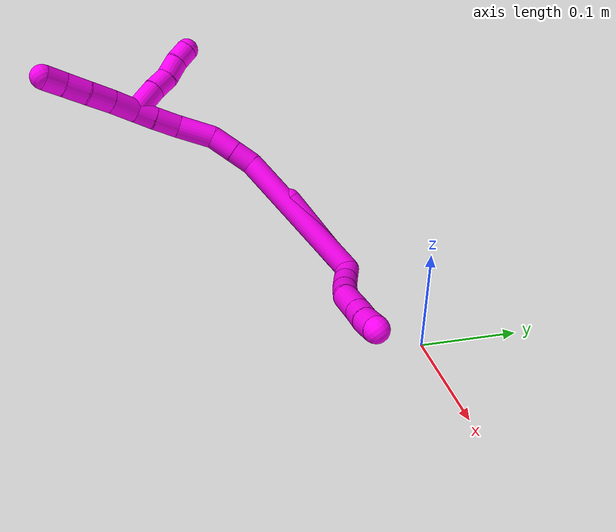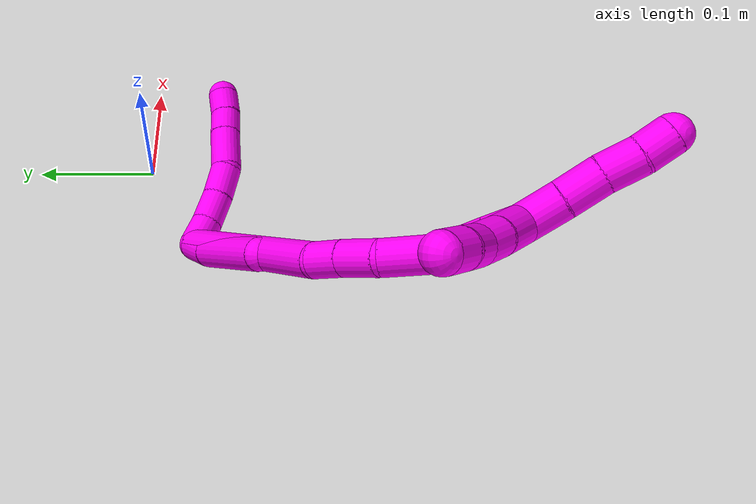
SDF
<sdf version="1.7">
 <world name="default">
  <model name="photoneo_s_sensor">
   <static>1</static>
   <pose>0 0 2 1.57079 1.57079 3.14159</pose>
   <link name="link">
    <inertial><mass>0.1</mass></inertial>
    <sensor name="sensor" type="depth">
     <update_rate>30</update_rate>
     <camera>
      <horizontal_fov>1.22</horizontal_fov>
      <image><width>1920</width><height>1200</height><format>B8G8R8</format></image>
      <clip><near>0.1</near><far>4</far></clip>
      <depth_camera><output>points</output></depth_camera>
     </camera>
     <plugin name="camera_plugin" filename="libgazebo_ros_depth_camera.so">
      <baseline>0.2</baseline>
      <alwaysOn>1</alwaysOn>
      <updateRate>0.0</updateRate>
      <cameraName>camera_ir</cameraName>
      <imageTopicName>/camera/color/image_raw</imageTopicName>
      <cameraInfoTopicName>/camera/color/camera_info</cameraInfoTopicName>
      <depthImageTopicName>/camera/depth/image_raw</depthImageTopicName>
      <depthImageCameraInfoTopicName>/camera/depth/camera_info</depthImageCameraInfoTopicName>
      <pointCloudTopicName>/camera/depth/points</pointCloudTopicName>
      <frameName>fr_optical</frameName>
      <pointCloudCutoff>0.1</pointCloudCutoff>
      <pointCloudCutoffMax>2.0</pointCloudCutoffMax>
      <distortionK1>0</distortionK1>
      <distortionK2>0</distortionK2>
      <distortionK3>0</distortionK3>
      <distortionT1>0</distortionT1>
      <distortionT2>0</distortionT2>
      <CxPrime>0</CxPrime>
      <Cx>0</Cx>
      <Cy>0</Cy>
      <focalLength>0</focalLength>
      <hackBaseline>0</hackBaseline>
     </plugin>
    </sensor>
   </link>
  </model>
  <model name="10">
   <static>0</static>
   <link name="10">
    <collision name="collision-cylinder-e_1_2_8">
     <pose>0.010362 -0.000328 -0.004202 3.06372 1.18447 3.02592</pose>
     <geometry><cylinder><radius>0.0125</radius><length>0.022373</length></cylinder></geometry>
     <surface>
      <friction><ode><mu>1.16</mu><mu2>1.16</mu2><slip1>0</slip1><slip2>0</slip2></ode></friction>
      <contact><ode><kp>1e+06</kp><kd>1</kd><max_vel>0</max_vel><min_depth>0.001</min_depth></ode></contact>
     </surface>
    </collision>
    <visual name="visual-cylinder-e_1_2_8">
     <pose>0.010362 -0.000328 -0.004202 3.06372 1.18447 3.02592</pose>
     <geometry><cylinder><radius>0.0125</radius><length>0.022373</length></cylinder></geometry>
     <material><ambient>1 0 0.964706 1</ambient></material>
    </visual>
    <collision name="collision-cylinder-e_2_8_9">
     <pose>0.033077 0.000796 -0.012335 -2.78774 1.24371 -2.65264</pose>
     <geometry><cylinder><radius>0.0125</radius><length>0.026087</length></cylinder></geometry>
     <surface>
      <friction><ode><mu>1.16</mu><mu2>1.16</mu2><slip1>0</slip1><slip2>0</slip2></ode></friction>
      <contact><ode><kp>1e+06</kp><kd>1</kd><max_vel>0</max_vel><min_depth>0.001</min_depth></ode></contact>
     </surface>
    </collision>
    <visual name="visual-cylinder-e_2_8_9">
     <pose>0.033077 0.000796 -0.012335 -2.78774 1.24371 -2.65264</pose>
     <geometry><cylinder><radius>0.0125</radius><length>0.026087</length></cylinder></geometry>
     <material><ambient>1 0 0.964706 1</ambient></material>
    </visual>
    <collision name="collision-cylinder-e_3_9_10">
     <pose>0.057878 0.005157 -0.020029 -2.48348 1.2059 -2.22074</pose>
     <geometry><cylinder><radius>0.0125</radius><length>0.026653</length></cylinder></geometry>
     <surface>
      <friction><ode><mu>1.16</mu><mu2>1.16</mu2><slip1>0</slip1><slip2>0</slip2></ode></friction>
      <contact><ode><kp>1e+06</kp><kd>1</kd><max_vel>0</max_vel><min_depth>0.001</min_depth></ode></contact>
     </surface>
    </collision>
    <visual name="visual-cylinder-e_3_9_10">
     <pose>0.057878 0.005157 -0.020029 -2.48348 1.2059 -2.22074</pose>
     <geometry><cylinder><radius>0.0125</radius><length>0.026653</length></cylinder></geometry>
     <material><ambient>1 0 0.964706 1</ambient></material>
    </visual>
    <collision name="collision-cylinder-e_4_10_11">
     <pose>0.083763 0.014319 -0.032697 -2.52937 0.890045 -1.97114</pose>
     <geometry><cylinder><radius>0.0125</radius><length>0.034579</length></cylinder></geometry>
     <surface>
      <friction><ode><mu>1.16</mu><mu2>1.16</mu2><slip1>0</slip1><slip2>0</slip2></ode></friction>
      <contact><ode><kp>1e+06</kp><kd>1</kd><max_vel>0</max_vel><min_depth>0.001</min_depth></ode></contact>
     </surface>
    </collision>
    <visual name="visual-cylinder-e_4_10_11">
     <pose>0.083763 0.014319 -0.032697 -2.52937 0.890045 -1.97114</pose>
     <geometry><cylinder><radius>0.0125</radius><length>0.034579</length></cylinder></geometry>
     <material><ambient>1 0 0.964706 1</ambient></material>
    </visual>
    <collision name="collision-cylinder-e_5_11_12">
     <pose>0.105286 0.023969 -0.046472 -2.53264 0.937524 -2.03082</pose>
     <geometry><cylinder><radius>0.0125</radius><length>0.020067</length></cylinder></geometry>
     <surface>
      <friction><ode><mu>1.16</mu><mu2>1.16</mu2><slip1>0</slip1><slip2>0</slip2></ode></friction>
      <contact><ode><kp>1e+06</kp><kd>1</kd><max_vel>0</max_vel><min_depth>0.001</min_depth></ode></contact>
     </surface>
    </collision>
    <visual name="visual-cylinder-e_5_11_12">
     <pose>0.105286 0.023969 -0.046472 -2.53264 0.937524 -2.03082</pose>
     <geometry><cylinder><radius>0.0125</radius><length>0.020067</length></cylinder></geometry>
     <material><ambient>1 0 0.964706 1</ambient></material>
    </visual>
    <collision name="collision-cylinder-e_6_12_6">
     <pose>0.120771 0.031886 -0.056564 -2.42805 0.819655 -1.7234</pose>
     <geometry><cylinder><radius>0.0125</radius><length>0.02024</length></cylinder></geometry>
     <surface>
      <friction><ode><mu>1.16</mu><mu2>1.16</mu2><slip1>0</slip1><slip2>0</slip2></ode></friction>
      <contact><ode><kp>1e+06</kp><kd>1</kd><max_vel>0</max_vel><min_depth>0.001</min_depth></ode></contact>
     </surface>
    </collision>
    <visual name="visual-cylinder-e_6_12_6">
     <pose>0.120771 0.031886 -0.056564 -2.42805 0.819655 -1.7234</pose>
     <geometry><cylinder><radius>0.0125</radius><length>0.02024</length></cylinder></geometry>
     <material><ambient>1 0 0.964706 1</ambient></material>
    </visual>
    <collision name="collision-cylinder-e_1_2_13">
     <pose>-0.000343 -0.001597 0.01241 0.127991 -0.027413 -0.001757</pose>
     <geometry><cylinder><radius>0.0125</radius><length>0.025034</length></cylinder></geometry>
     <surface>
      <friction><ode><mu>1.16</mu><mu2>1.16</mu2><slip1>0</slip1><slip2>0</slip2></ode></friction>
      <contact><ode><kp>1e+06</kp><kd>1</kd><max_vel>0</max_vel><min_depth>0.001</min_depth></ode></contact>
     </surface>
    </collision>
    <visual name="visual-cylinder-e_1_2_13">
     <pose>-0.000343 -0.001597 0.01241 0.127991 -0.027413 -0.001757</pose>
     <geometry><cylinder><radius>0.0125</radius><length>0.025034</length></cylinder></geometry>
     <material><ambient>1 0 0.964706 1</ambient></material>
    </visual>
    <collision name="collision-cylinder-e_2_13_5">
     <pose>0.003296 -0.003356 0.06209 0.004331 0.106452 0.000231</pose>
     <geometry><cylinder><radius>0.0125</radius><length>0.074966</length></cylinder></geometry>
     <surface>
      <friction><ode><mu>1.16</mu><mu2>1.16</mu2><slip1>0</slip1><slip2>0</slip2></ode></friction>
      <contact><ode><kp>1e+06</kp><kd>1</kd><max_vel>0</max_vel><min_depth>0.001</min_depth></ode></contact>
     </surface>
    </collision>
    <visual name="visual-cylinder-e_2_13_5">
     <pose>0.003296 -0.003356 0.06209 0.004331 0.106452 0.000231</pose>
     <geometry><cylinder><radius>0.0125</radius><length>0.074966</length></cylinder></geometry>
     <material><ambient>1 0 0.964706 1</ambient></material>
    </visual>
    <collision name="collision-cylinder-e_1_2_14">
     <pose>0.008092 -0.005474 0.078648 0.069492 0.102278 0.003558</pose>
     <geometry><cylinder><radius>0.0125</radius><length>0.158506</length></cylinder></geometry>
     <surface>
      <friction><ode><mu>1.16</mu><mu2>1.16</mu2><slip1>0</slip1><slip2>0</slip2></ode></friction>
      <contact><ode><kp>1e+06</kp><kd>1</kd><max_vel>0</max_vel><min_depth>0.001</min_depth></ode></contact>
     </surface>
    </collision>
    <visual name="visual-cylinder-e_1_2_14">
     <pose>0.008092 -0.005474 0.078648 0.069492 0.102278 0.003558</pose>
     <geometry><cylinder><radius>0.0125</radius><length>0.158506</length></cylinder></geometry>
     <material><ambient>1 0 0.964706 1</ambient></material>
    </visual>
    <collision name="collision-cylinder-e_2_14_15">
     <pose>0.020484 -0.013469 0.168214 0.226935 0.366494 0.042232</pose>
     <geometry><cylinder><radius>0.0125</radius><length>0.024003</length></cylinder></geometry>
     <surface>
      <friction><ode><mu>1.16</mu><mu2>1.16</mu2><slip1>0</slip1><slip2>0</slip2></ode></friction>
      <contact><ode><kp>1e+06</kp><kd>1</kd><max_vel>0</max_vel><min_depth>0.001</min_depth></ode></contact>
     </surface>
    </collision>
    <visual name="visual-cylinder-e_2_14_15">
     <pose>0.020484 -0.013469 0.168214 0.226935 0.366494 0.042232</pose>
     <geometry><cylinder><radius>0.0125</radius><length>0.024003</length></cylinder></geometry>
     <material><ambient>1 0 0.964706 1</ambient></material>
    </visual>
    <collision name="collision-cylinder-e_3_15_16">
     <pose>0.029239 -0.019272 0.192195 0.246117 0.319362 0.039834</pose>
     <geometry><cylinder><radius>0.0125</radius><length>0.028373</length></cylinder></geometry>
     <surface>
      <friction><ode><mu>1.16</mu><mu2>1.16</mu2><slip1>0</slip1><slip2>0</slip2></ode></friction>
      <contact><ode><kp>1e+06</kp><kd>1</kd><max_vel>0</max_vel><min_depth>0.001</min_depth></ode></contact>
     </surface>
    </collision>
    <visual name="visual-cylinder-e_3_15_16">
     <pose>0.029239 -0.019272 0.192195 0.246117 0.319362 0.039834</pose>
     <geometry><cylinder><radius>0.0125</radius><length>0.028373</length></cylinder></geometry>
     <material><ambient>1 0 0.964706 1</ambient></material>
    </visual>
    <collision name="collision-cylinder-e_4_16_17">
     <pose>0.044011 -0.031365 0.220111 0.53542 0.538563 0.151114</pose>
     <geometry><cylinder><radius>0.0125</radius><length>0.040234</length></cylinder></geometry>
     <surface>
      <friction><ode><mu>1.16</mu><mu2>1.16</mu2><slip1>0</slip1><slip2>0</slip2></ode></friction>
      <contact><ode><kp>1e+06</kp><kd>1</kd><max_vel>0</max_vel><min_depth>0.001</min_depth></ode></contact>
     </surface>
    </collision>
    <visual name="visual-cylinder-e_4_16_17">
     <pose>0.044011 -0.031365 0.220111 0.53542 0.538563 0.151114</pose>
     <geometry><cylinder><radius>0.0125</radius><length>0.040234</length></cylinder></geometry>
     <material><ambient>1 0 0.964706 1</ambient></material>
    </visual>
    <collision name="collision-cylinder-e_5_17_18">
     <pose>0.064704 -0.043995 0.243578 0.41737 0.833454 0.186933</pose>
     <geometry><cylinder><radius>0.0125</radius><length>0.028032</length></cylinder></geometry>
     <surface>
      <friction><ode><mu>1.16</mu><mu2>1.16</mu2><slip1>0</slip1><slip2>0</slip2></ode></friction>
      <contact><ode><kp>1e+06</kp><kd>1</kd><max_vel>0</max_vel><min_depth>0.001</min_depth></ode></contact>
     </surface>
    </collision>
    <visual name="visual-cylinder-e_5_17_18">
     <pose>0.064704 -0.043995 0.243578 0.41737 0.833454 0.186933</pose>
     <geometry><cylinder><radius>0.0125</radius><length>0.028032</length></cylinder></geometry>
     <material><ambient>1 0 0.964706 1</ambient></material>
    </visual>
    <collision name="collision-cylinder-e_6_18_1">
     <pose>0.08241 -0.050512 0.259098 0.372304 0.779738 0.154465</pose>
     <geometry><cylinder><radius>0.0125</radius><length>0.020852</length></cylinder></geometry>
     <surface>
      <friction><ode><mu>1.16</mu><mu2>1.16</mu2><slip1>0</slip1><slip2>0</slip2></ode></friction>
      <contact><ode><kp>1e+06</kp><kd>1</kd><max_vel>0</max_vel><min_depth>0.001</min_depth></ode></contact>
     </surface>
    </collision>
    <visual name="visual-cylinder-e_6_18_1">
     <pose>0.08241 -0.050512 0.259098 0.372304 0.779738 0.154465</pose>
     <geometry><cylinder><radius>0.0125</radius><length>0.020852</length></cylinder></geometry>
     <material><ambient>1 0 0.964706 1</ambient></material>
    </visual>
    <collision name="collision-cylinder-e_1_1_19">
     <pose>0.078166 -0.042577 0.273186 -0.976705 -0.733995 0.402916</pose>
     <geometry><cylinder><radius>0.0125</radius><length>0.03456</length></cylinder></geometry>
     <surface>
      <friction><ode><mu>1.16</mu><mu2>1.16</mu2><slip1>0</slip1><slip2>0</slip2></ode></friction>
      <contact><ode><kp>1e+06</kp><kd>1</kd><max_vel>0</max_vel><min_depth>0.001</min_depth></ode></contact>
     </surface>
    </collision>
    <visual name="visual-cylinder-e_1_1_19">
     <pose>0.078166 -0.042577 0.273186 -0.976705 -0.733995 0.402916</pose>
     <geometry><cylinder><radius>0.0125</radius><length>0.03456</length></cylinder></geometry>
     <material><ambient>1 0 0.964706 1</ambient></material>
    </visual>
    <collision name="collision-cylinder-e_2_19_20">
     <pose>0.058786 -0.024854 0.28386 -1.11313 -0.779136 0.500175</pose>
     <geometry><cylinder><radius>0.0125</radius><length>0.022216</length></cylinder></geometry>
     <surface>
      <friction><ode><mu>1.16</mu><mu2>1.16</mu2><slip1>0</slip1><slip2>0</slip2></ode></friction>
      <contact><ode><kp>1e+06</kp><kd>1</kd><max_vel>0</max_vel><min_depth>0.001</min_depth></ode></contact>
     </surface>
    </collision>
    <visual name="visual-cylinder-e_2_19_20">
     <pose>0.058786 -0.024854 0.28386 -1.11313 -0.779136 0.500175</pose>
     <geometry><cylinder><radius>0.0125</radius><length>0.022216</length></cylinder></geometry>
     <material><ambient>1 0 0.964706 1</ambient></material>
    </visual>
    <collision name="collision-cylinder-e_3_20_21">
     <pose>0.044972 -0.00988 0.293237 -0.929637 -0.548278 0.280196</pose>
     <geometry><cylinder><radius>0.0125</radius><length>0.023057</length></cylinder></geometry>
     <surface>
      <friction><ode><mu>1.16</mu><mu2>1.16</mu2><slip1>0</slip1><slip2>0</slip2></ode></friction>
      <contact><ode><kp>1e+06</kp><kd>1</kd><max_vel>0</max_vel><min_depth>0.001</min_depth></ode></contact>
     </surface>
    </collision>
    <visual name="visual-cylinder-e_3_20_21">
     <pose>0.044972 -0.00988 0.293237 -0.929637 -0.548278 0.280196</pose>
     <geometry><cylinder><radius>0.0125</radius><length>0.023057</length></cylinder></geometry>
     <material><ambient>1 0 0.964706 1</ambient></material>
    </visual>
    <collision name="collision-cylinder-e_4_21_4">
     <pose>0.032892 0.005169 0.302797 -1.09673 -0.646022 0.403391</pose>
     <geometry><cylinder><radius>0.0125</radius><length>0.020167</length></cylinder></geometry>
     <surface>
      <friction><ode><mu>1.16</mu><mu2>1.16</mu2><slip1>0</slip1><slip2>0</slip2></ode></friction>
      <contact><ode><kp>1e+06</kp><kd>1</kd><max_vel>0</max_vel><min_depth>0.001</min_depth></ode></contact>
     </surface>
    </collision>
    <visual name="visual-cylinder-e_4_21_4">
     <pose>0.032892 0.005169 0.302797 -1.09673 -0.646022 0.403391</pose>
     <geometry><cylinder><radius>0.0125</radius><length>0.020167</length></cylinder></geometry>
     <material><ambient>1 0 0.964706 1</ambient></material>
    </visual>
    <collision name="collision-cylinder-e_1_1_22">
     <pose>0.101444 -0.055405 0.273509 0.284699 0.981752 0.152913</pose>
     <geometry><cylinder><radius>0.0125</radius><length>0.028152</length></cylinder></geometry>
     <surface>
      <friction><ode><mu>1.16</mu><mu2>1.16</mu2><slip1>0</slip1><slip2>0</slip2></ode></friction>
      <contact><ode><kp>1e+06</kp><kd>1</kd><max_vel>0</max_vel><min_depth>0.001</min_depth></ode></contact>
     </surface>
    </collision>
    <visual name="visual-cylinder-e_1_1_22">
     <pose>0.101444 -0.055405 0.273509 0.284699 0.981752 0.152913</pose>
     <geometry><cylinder><radius>0.0125</radius><length>0.028152</length></cylinder></geometry>
     <material><ambient>1 0 0.964706 1</ambient></material>
    </visual>
    <collision name="collision-cylinder-e_2_22_23">
     <pose>0.124501 -0.059752 0.287353 0.327078 1.03812 0.187992</pose>
     <geometry><cylinder><radius>0.0125</radius><length>0.026358</length></cylinder></geometry>
     <surface>
      <friction><ode><mu>1.16</mu><mu2>1.16</mu2><slip1>0</slip1><slip2>0</slip2></ode></friction>
      <contact><ode><kp>1e+06</kp><kd>1</kd><max_vel>0</max_vel><min_depth>0.001</min_depth></ode></contact>
     </surface>
    </collision>
    <visual name="visual-cylinder-e_2_22_23">
     <pose>0.124501 -0.059752 0.287353 0.327078 1.03812 0.187992</pose>
     <geometry><cylinder><radius>0.0125</radius><length>0.026358</length></cylinder></geometry>
     <material><ambient>1 0 0.964706 1</ambient></material>
    </visual>
    <collision name="collision-cylinder-e_3_23_24">
     <pose>0.145656 -0.064594 0.300577 0.372652 0.924543 0.187315</pose>
     <geometry><cylinder><radius>0.0125</radius><length>0.024555</length></cylinder></geometry>
     <surface>
      <friction><ode><mu>1.16</mu><mu2>1.16</mu2><slip1>0</slip1><slip2>0</slip2></ode></friction>
      <contact><ode><kp>1e+06</kp><kd>1</kd><max_vel>0</max_vel><min_depth>0.001</min_depth></ode></contact>
     </surface>
    </collision>
    <visual name="visual-cylinder-e_3_23_24">
     <pose>0.145656 -0.064594 0.300577 0.372652 0.924543 0.187315</pose>
     <geometry><cylinder><radius>0.0125</radius><length>0.024555</length></cylinder></geometry>
     <material><ambient>1 0 0.964706 1</ambient></material>
    </visual>
    <collision name="collision-cylinder-e_4_24_3">
     <pose>0.164614 -0.068782 0.312309 0.299296 1.06493 0.177219</pose>
     <geometry><cylinder><radius>0.0125</radius><length>0.020935</length></cylinder></geometry>
     <surface>
      <friction><ode><mu>1.16</mu><mu2>1.16</mu2><slip1>0</slip1><slip2>0</slip2></ode></friction>
      <contact><ode><kp>1e+06</kp><kd>1</kd><max_vel>0</max_vel><min_depth>0.001</min_depth></ode></contact>
     </surface>
    </collision>
    <visual name="visual-cylinder-e_4_24_3">
     <pose>0.164614 -0.068782 0.312309 0.299296 1.06493 0.177219</pose>
     <geometry><cylinder><radius>0.0125</radius><length>0.020935</length></cylinder></geometry>
     <material><ambient>1 0 0.964706 1</ambient></material>
    </visual>
    <collision name="collision-sphere-3">
     <pose>0.173771 -0.070277 0.317156 0 -0 0</pose>
     <geometry><sphere><radius>0.0125</radius></sphere></geometry>
     <surface>
      <friction><ode><mu>1.16</mu><mu2>1.16</mu2><slip1>0</slip1><slip2>0</slip2></ode></friction>
      <contact><ode><kp>1e+06</kp><kd>1</kd><max_vel>0</max_vel><min_depth>0.001</min_depth></ode></contact>
     </surface>
    </collision>
    <visual name="visual-sphere-3">
     <pose>0.173771 -0.070277 0.317156 0 -0 0</pose>
     <geometry><sphere><radius>0.0125</radius></sphere></geometry>
     <material><ambient>1 0 0.964706 1</ambient></material>
    </visual>
    <collision name="collision-sphere-24">
     <pose>0.155458 -0.067286 0.307463 0 -0 0</pose>
     <geometry><sphere><radius>0.0125</radius></sphere></geometry>
     <surface>
      <friction><ode><mu>1.16</mu><mu2>1.16</mu2><slip1>0</slip1><slip2>0</slip2></ode></friction>
      <contact><ode><kp>1e+06</kp><kd>1</kd><max_vel>0</max_vel><min_depth>0.001</min_depth></ode></contact>
     </surface>
    </collision>
    <visual name="visual-sphere-24">
     <pose>0.155458 -0.067286 0.307463 0 -0 0</pose>
     <geometry><sphere><radius>0.0125</radius></sphere></geometry>
     <material><ambient>1 0 0.964706 1</ambient></material>
    </visual>
    <collision name="collision-sphere-23">
     <pose>0.135855 -0.061902 0.293691 0 -0 0</pose>
     <geometry><sphere><radius>0.0125</radius></sphere></geometry>
     <surface>
      <friction><ode><mu>1.16</mu><mu2>1.16</mu2><slip1>0</slip1><slip2>0</slip2></ode></friction>
      <contact><ode><kp>1e+06</kp><kd>1</kd><max_vel>0</max_vel><min_depth>0.001</min_depth></ode></contact>
     </surface>
    </collision>
    <visual name="visual-sphere-23">
     <pose>0.135855 -0.061902 0.293691 0 -0 0</pose>
     <geometry><sphere><radius>0.0125</radius></sphere></geometry>
     <material><ambient>1 0 0.964706 1</ambient></material>
    </visual>
    <collision name="collision-sphere-22">
     <pose>0.113148 -0.057602 0.281014 0 -0 0</pose>
     <geometry><sphere><radius>0.0125</radius></sphere></geometry>
     <surface>
      <friction><ode><mu>1.16</mu><mu2>1.16</mu2><slip1>0</slip1><slip2>0</slip2></ode></friction>
      <contact><ode><kp>1e+06</kp><kd>1</kd><max_vel>0</max_vel><min_depth>0.001</min_depth></ode></contact>
     </surface>
    </collision>
    <visual name="visual-sphere-22">
     <pose>0.113148 -0.057602 0.281014 0 -0 0</pose>
     <geometry><sphere><radius>0.0125</radius></sphere></geometry>
     <material><ambient>1 0 0.964706 1</ambient></material>
    </visual>
    <collision name="collision-sphere-4">
     <pose>0.026822 0.012332 0.306473 0 -0 0</pose>
     <geometry><sphere><radius>0.0125</radius></sphere></geometry>
     <surface>
      <friction><ode><mu>1.16</mu><mu2>1.16</mu2><slip1>0</slip1><slip2>0</slip2></ode></friction>
      <contact><ode><kp>1e+06</kp><kd>1</kd><max_vel>0</max_vel><min_depth>0.001</min_depth></ode></contact>
     </surface>
    </collision>
    <visual name="visual-sphere-4">
     <pose>0.026822 0.012332 0.306473 0 -0 0</pose>
     <geometry><sphere><radius>0.0125</radius></sphere></geometry>
     <material><ambient>1 0 0.964706 1</ambient></material>
    </visual>
    <collision name="collision-sphere-21">
     <pose>0.038963 -0.001995 0.299122 0 -0 0</pose>
     <geometry><sphere><radius>0.0125</radius></sphere></geometry>
     <surface>
      <friction><ode><mu>1.16</mu><mu2>1.16</mu2><slip1>0</slip1><slip2>0</slip2></ode></friction>
      <contact><ode><kp>1e+06</kp><kd>1</kd><max_vel>0</max_vel><min_depth>0.001</min_depth></ode></contact>
     </surface>
    </collision>
    <visual name="visual-sphere-21">
     <pose>0.038963 -0.001995 0.299122 0 -0 0</pose>
     <geometry><sphere><radius>0.0125</radius></sphere></geometry>
     <material><ambient>1 0 0.964706 1</ambient></material>
    </visual>
    <collision name="collision-sphere-20">
     <pose>0.05098 -0.017764 0.287352 0 -0 0</pose>
     <geometry><sphere><radius>0.0125</radius></sphere></geometry>
     <surface>
      <friction><ode><mu>1.16</mu><mu2>1.16</mu2><slip1>0</slip1><slip2>0</slip2></ode></friction>
      <contact><ode><kp>1e+06</kp><kd>1</kd><max_vel>0</max_vel><min_depth>0.001</min_depth></ode></contact>
     </surface>
    </collision>
    <visual name="visual-sphere-20">
     <pose>0.05098 -0.017764 0.287352 0 -0 0</pose>
     <geometry><sphere><radius>0.0125</radius></sphere></geometry>
     <material><ambient>1 0 0.964706 1</ambient></material>
    </visual>
    <collision name="collision-sphere-12">
     <pose>0.113374 0.027366 -0.051343 0 -0 0</pose>
     <geometry><sphere><radius>0.0125</radius></sphere></geometry>
     <surface>
      <friction><ode><mu>1.16</mu><mu2>1.16</mu2><slip1>0</slip1><slip2>0</slip2></ode></friction>
      <contact><ode><kp>1e+06</kp><kd>1</kd><max_vel>0</max_vel><min_depth>0.001</min_depth></ode></contact>
     </surface>
    </collision>
    <visual name="visual-sphere-12">
     <pose>0.113374 0.027366 -0.051343 0 -0 0</pose>
     <geometry><sphere><radius>0.0125</radius></sphere></geometry>
     <material><ambient>1 0 0.964706 1</ambient></material>
    </visual>
    <collision name="collision-sphere-11">
     <pose>0.097198 0.020573 -0.041602 0 -0 0</pose>
     <geometry><sphere><radius>0.0125</radius></sphere></geometry>
     <surface>
      <friction><ode><mu>1.16</mu><mu2>1.16</mu2><slip1>0</slip1><slip2>0</slip2></ode></friction>
      <contact><ode><kp>1e+06</kp><kd>1</kd><max_vel>0</max_vel><min_depth>0.001</min_depth></ode></contact>
     </surface>
    </collision>
    <visual name="visual-sphere-11">
     <pose>0.097198 0.020573 -0.041602 0 -0 0</pose>
     <geometry><sphere><radius>0.0125</radius></sphere></geometry>
     <material><ambient>1 0 0.964706 1</ambient></material>
    </visual>
    <collision name="collision-sphere-10">
     <pose>0.070327 0.008066 -0.023791 0 -0 0</pose>
     <geometry><sphere><radius>0.0125</radius></sphere></geometry>
     <surface>
      <friction><ode><mu>1.16</mu><mu2>1.16</mu2><slip1>0</slip1><slip2>0</slip2></ode></friction>
      <contact><ode><kp>1e+06</kp><kd>1</kd><max_vel>0</max_vel><min_depth>0.001</min_depth></ode></contact>
     </surface>
    </collision>
    <visual name="visual-sphere-10">
     <pose>0.070327 0.008066 -0.023791 0 -0 0</pose>
     <geometry><sphere><radius>0.0125</radius></sphere></geometry>
     <material><ambient>1 0 0.964706 1</ambient></material>
    </visual>
    <collision name="collision-sphere-9">
     <pose>0.045429 0.002248 -0.016267 0 -0 0</pose>
     <geometry><sphere><radius>0.0125</radius></sphere></geometry>
     <surface>
      <friction><ode><mu>1.16</mu><mu2>1.16</mu2><slip1>0</slip1><slip2>0</slip2></ode></friction>
      <contact><ode><kp>1e+06</kp><kd>1</kd><max_vel>0</max_vel><min_depth>0.001</min_depth></ode></contact>
     </surface>
    </collision>
    <visual name="visual-sphere-9">
     <pose>0.045429 0.002248 -0.016267 0 -0 0</pose>
     <geometry><sphere><radius>0.0125</radius></sphere></geometry>
     <material><ambient>1 0 0.964706 1</ambient></material>
    </visual>
    <collision name="collision-sphere-2">
     <geometry><sphere><radius>0.0125</radius></sphere></geometry>
     <surface>
      <friction><ode><mu>1.16</mu><mu2>1.16</mu2><slip1>0</slip1><slip2>0</slip2></ode></friction>
      <contact><ode><kp>1e+06</kp><kd>1</kd><max_vel>0</max_vel><min_depth>0.001</min_depth></ode></contact>
     </surface>
    </collision>
    <visual name="visual-sphere-2">
     <geometry><sphere><radius>0.0125</radius></sphere></geometry>
     <material><ambient>1 0 0.964706 1</ambient></material>
    </visual>
    <collision name="collision-sphere-19">
     <pose>0.066591 -0.031945 0.280368 0 -0 0</pose>
     <geometry><sphere><radius>0.0125</radius></sphere></geometry>
     <surface>
      <friction><ode><mu>1.16</mu><mu2>1.16</mu2><slip1>0</slip1><slip2>0</slip2></ode></friction>
      <contact><ode><kp>1e+06</kp><kd>1</kd><max_vel>0</max_vel><min_depth>0.001</min_depth></ode></contact>
     </surface>
    </collision>
    <visual name="visual-sphere-19">
     <pose>0.066591 -0.031945 0.280368 0 -0 0</pose>
     <geometry><sphere><radius>0.0125</radius></sphere></geometry>
     <material><ambient>1 0 0.964706 1</ambient></material>
    </visual>
    <collision name="collision-sphere-8">
     <pose>0.020724 -0.000656 -0.008404 0 -0 0</pose>
     <geometry><sphere><radius>0.0125</radius></sphere></geometry>
     <surface>
      <friction><ode><mu>1.16</mu><mu2>1.16</mu2><slip1>0</slip1><slip2>0</slip2></ode></friction>
      <contact><ode><kp>1e+06</kp><kd>1</kd><max_vel>0</max_vel><min_depth>0.001</min_depth></ode></contact>
     </surface>
    </collision>
    <visual name="visual-sphere-8">
     <pose>0.020724 -0.000656 -0.008404 0 -0 0</pose>
     <geometry><sphere><radius>0.0125</radius></sphere></geometry>
     <material><ambient>1 0 0.964706 1</ambient></material>
    </visual>
    <collision name="collision-sphere-6">
     <pose>0.128168 0.036407 -0.061786 0 -0 0</pose>
     <geometry><sphere><radius>0.0125</radius></sphere></geometry>
     <surface>
      <friction><ode><mu>1.16</mu><mu2>1.16</mu2><slip1>0</slip1><slip2>0</slip2></ode></friction>
      <contact><ode><kp>1e+06</kp><kd>1</kd><max_vel>0</max_vel><min_depth>0.001</min_depth></ode></contact>
     </surface>
    </collision>
    <visual name="visual-sphere-6">
     <pose>0.128168 0.036407 -0.061786 0 -0 0</pose>
     <geometry><sphere><radius>0.0125</radius></sphere></geometry>
     <material><ambient>1 0 0.964706 1</ambient></material>
    </visual>
    <collision name="collision-sphere-13">
     <pose>-0.000686 -0.003194 0.02482 0 -0 0</pose>
     <geometry><sphere><radius>0.0125</radius></sphere></geometry>
     <surface>
      <friction><ode><mu>1.16</mu><mu2>1.16</mu2><slip1>0</slip1><slip2>0</slip2></ode></friction>
      <contact><ode><kp>1e+06</kp><kd>1</kd><max_vel>0</max_vel><min_depth>0.001</min_depth></ode></contact>
     </surface>
    </collision>
    <visual name="visual-sphere-13">
     <pose>-0.000686 -0.003194 0.02482 0 -0 0</pose>
     <geometry><sphere><radius>0.0125</radius></sphere></geometry>
     <material><ambient>1 0 0.964706 1</ambient></material>
    </visual>
    <collision name="collision-sphere-5">
     <pose>0.007279 -0.003517 0.099361 0 -0 0</pose>
     <geometry><sphere><radius>0.0125</radius></sphere></geometry>
     <surface>
      <friction><ode><mu>1.16</mu><mu2>1.16</mu2><slip1>0</slip1><slip2>0</slip2></ode></friction>
      <contact><ode><kp>1e+06</kp><kd>1</kd><max_vel>0</max_vel><min_depth>0.001</min_depth></ode></contact>
     </surface>
    </collision>
    <visual name="visual-sphere-5">
     <pose>0.007279 -0.003517 0.099361 0 -0 0</pose>
     <geometry><sphere><radius>0.0125</radius></sphere></geometry>
     <material><ambient>1 0 0.964706 1</ambient></material>
    </visual>
    <collision name="collision-sphere-14">
     <pose>0.016183 -0.010949 0.157297 0 -0 0</pose>
     <geometry><sphere><radius>0.0125</radius></sphere></geometry>
     <surface>
      <friction><ode><mu>1.16</mu><mu2>1.16</mu2><slip1>0</slip1><slip2>0</slip2></ode></friction>
      <contact><ode><kp>1e+06</kp><kd>1</kd><max_vel>0</max_vel><min_depth>0.001</min_depth></ode></contact>
     </surface>
    </collision>
    <visual name="visual-sphere-14">
     <pose>0.016183 -0.010949 0.157297 0 -0 0</pose>
     <geometry><sphere><radius>0.0125</radius></sphere></geometry>
     <material><ambient>1 0 0.964706 1</ambient></material>
    </visual>
    <collision name="collision-sphere-15">
     <pose>0.024785 -0.01599 0.179131 0 -0 0</pose>
     <geometry><sphere><radius>0.0125</radius></sphere></geometry>
     <surface>
      <friction><ode><mu>1.16</mu><mu2>1.16</mu2><slip1>0</slip1><slip2>0</slip2></ode></friction>
      <contact><ode><kp>1e+06</kp><kd>1</kd><max_vel>0</max_vel><min_depth>0.001</min_depth></ode></contact>
     </surface>
    </collision>
    <visual name="visual-sphere-15">
     <pose>0.024785 -0.01599 0.179131 0 -0 0</pose>
     <geometry><sphere><radius>0.0125</radius></sphere></geometry>
     <material><ambient>1 0 0.964706 1</ambient></material>
    </visual>
    <collision name="collision-sphere-16">
     <pose>0.033693 -0.022554 0.205258 0 -0 0</pose>
     <geometry><sphere><radius>0.0125</radius></sphere></geometry>
     <surface>
      <friction><ode><mu>1.16</mu><mu2>1.16</mu2><slip1>0</slip1><slip2>0</slip2></ode></friction>
      <contact><ode><kp>1e+06</kp><kd>1</kd><max_vel>0</max_vel><min_depth>0.001</min_depth></ode></contact>
     </surface>
    </collision>
    <visual name="visual-sphere-16">
     <pose>0.033693 -0.022554 0.205258 0 -0 0</pose>
     <geometry><sphere><radius>0.0125</radius></sphere></geometry>
     <material><ambient>1 0 0.964706 1</ambient></material>
    </visual>
    <collision name="collision-sphere-17">
     <pose>0.054329 -0.040176 0.234963 0 -0 0</pose>
     <geometry><sphere><radius>0.0125</radius></sphere></geometry>
     <surface>
      <friction><ode><mu>1.16</mu><mu2>1.16</mu2><slip1>0</slip1><slip2>0</slip2></ode></friction>
      <contact><ode><kp>1e+06</kp><kd>1</kd><max_vel>0</max_vel><min_depth>0.001</min_depth></ode></contact>
     </surface>
    </collision>
    <visual name="visual-sphere-17">
     <pose>0.054329 -0.040176 0.234963 0 -0 0</pose>
     <geometry><sphere><radius>0.0125</radius></sphere></geometry>
     <material><ambient>1 0 0.964706 1</ambient></material>
    </visual>
    <collision name="collision-sphere-18">
     <pose>0.07508 -0.047815 0.252192 0 -0 0</pose>
     <geometry><sphere><radius>0.0125</radius></sphere></geometry>
     <surface>
      <friction><ode><mu>1.16</mu><mu2>1.16</mu2><slip1>0</slip1><slip2>0</slip2></ode></friction>
      <contact><ode><kp>1e+06</kp><kd>1</kd><max_vel>0</max_vel><min_depth>0.001</min_depth></ode></contact>
     </surface>
    </collision>
    <visual name="visual-sphere-18">
     <pose>0.07508 -0.047815 0.252192 0 -0 0</pose>
     <geometry><sphere><radius>0.0125</radius></sphere></geometry>
     <material><ambient>1 0 0.964706 1</ambient></material>
    </visual>
    <collision name="collision-sphere-1">
     <pose>0.089741 -0.053209 0.266004 0 -0 0</pose>
     <geometry><sphere><radius>0.0125</radius></sphere></geometry>
     <surface>
      <friction><ode><mu>1.16</mu><mu2>1.16</mu2><slip1>0</slip1><slip2>0</slip2></ode></friction>
      <contact><ode><kp>1e+06</kp><kd>1</kd><max_vel>0</max_vel><min_depth>0.001</min_depth></ode></contact>
     </surface>
    </collision>
    <visual name="visual-sphere-1">
     <pose>0.089741 -0.053209 0.266004 0 -0 0</pose>
     <geometry><sphere><radius>0.0125</radius></sphere></geometry>
     <material><ambient>1 0 0.964706 1</ambient></material>
    </visual>
    <inertial>
     <pose>0.049472 -0.016151 0.135546 0 -0 0</pose>
     <mass>0.75</mass>
     <inertia><ixx>0.000419</ixx><ixy>0</ixy><ixz>0</ixz><iyy>0.000425</iyy><iyz>0</iyz><izz>-9e-06</izz></inertia>
    </inertial>
   </link>
   <pose>-0.102402 -0.045433 0.031316 0.837932 -0.321352 -0.640761</pose>
  </model>
 </world>
</sdf>
